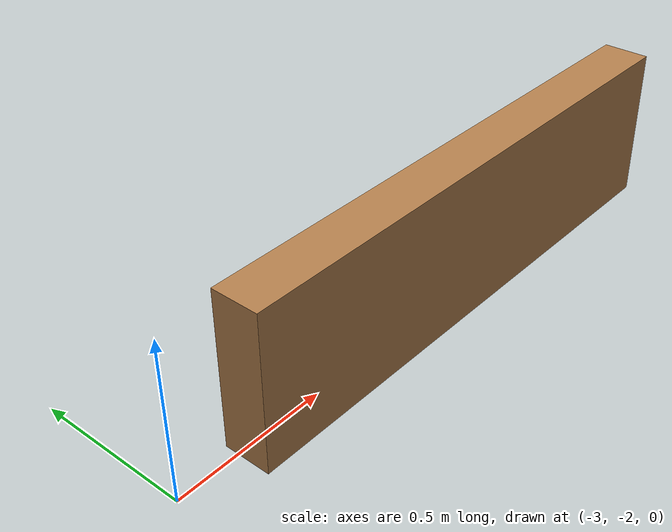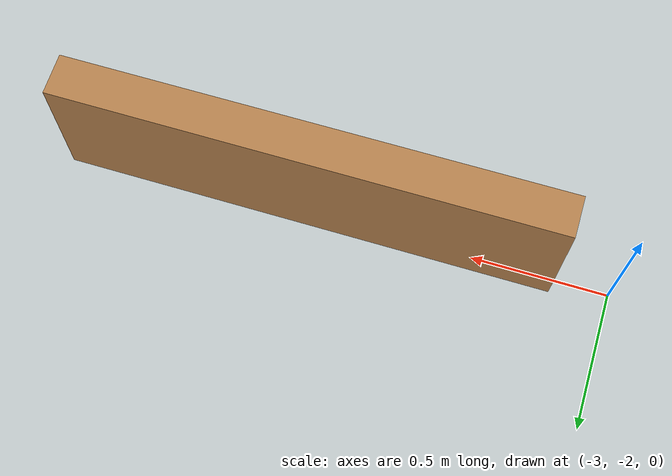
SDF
<?xml version='1.0'?>
<sdf version='1.7'>
  <model name='pared'>
    <pose>-1.3975 -1.0525 0 0 -0 0</pose>
    <link name='Wall_0'>
      <collision name='Wall_0_Collision'>
        <geometry>
          <box>
            <size>1.8 0.15 0.5</size>
          </box>
        </geometry>
        <pose>0 0 0.25 0 -0 0</pose>
      </collision>
      <visual name='Wall_0_Visual'>
        <pose>0 0 0.25 0 -0 0</pose>
        <geometry>
          <box>
            <size>1.8 0.15 0.5</size>
          </box>
        </geometry>
        <material>
          <script>
            <uri>file://media/materials/scripts/gazebo.material</uri>
            <name>Gazebo/Wood</name>
          </script>
          <ambient>1 1 1 1</ambient>
        </material>
        <meta>
          <layer>0</layer>
        </meta>
      </visual>
      <pose>-0.4975 -0.9775 0 0 -0 0</pose>
    </link>
    <static>1</static>
  </model>
</sdf>
